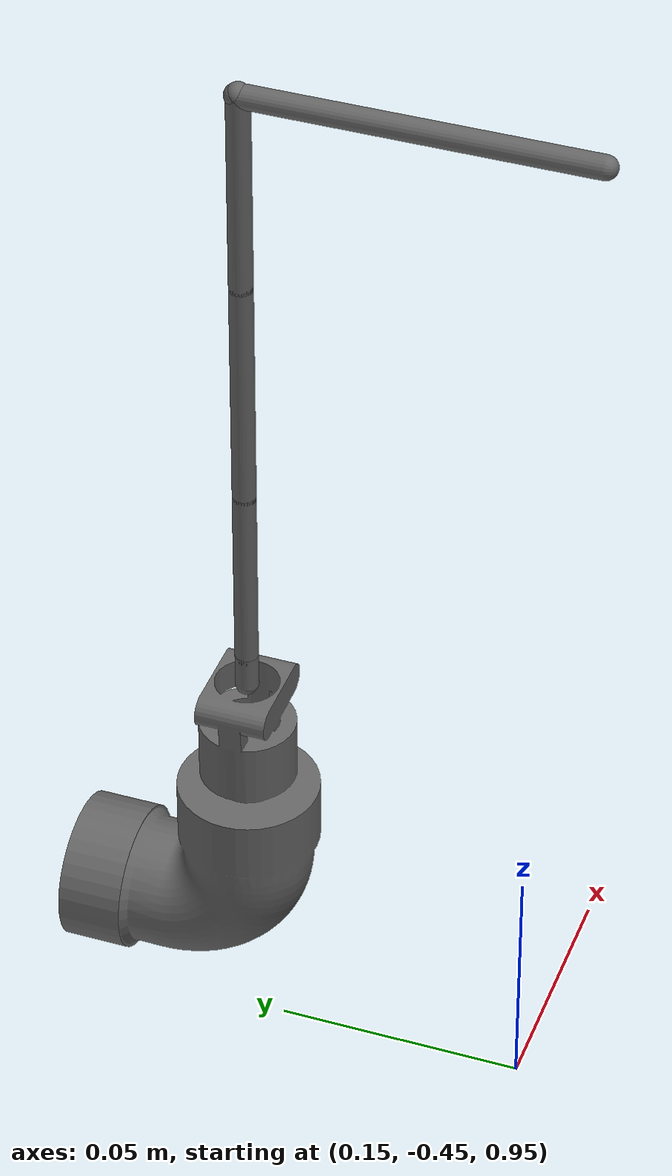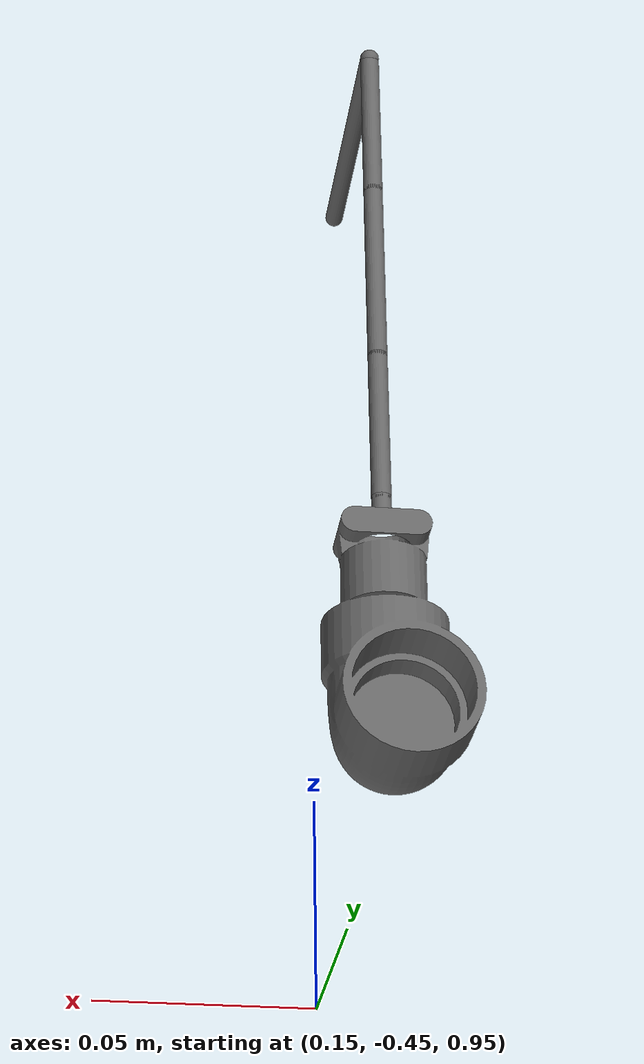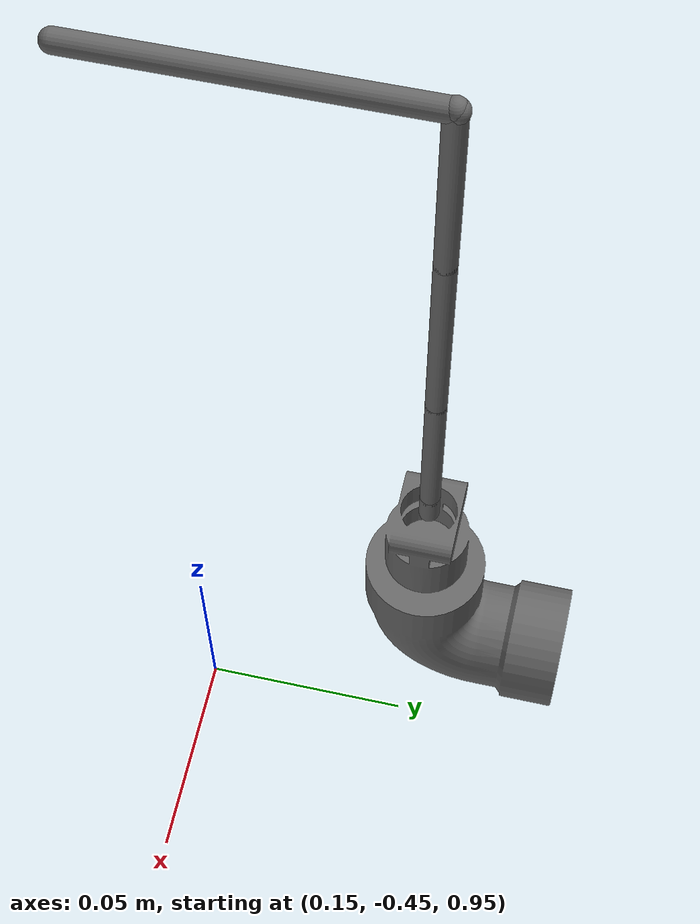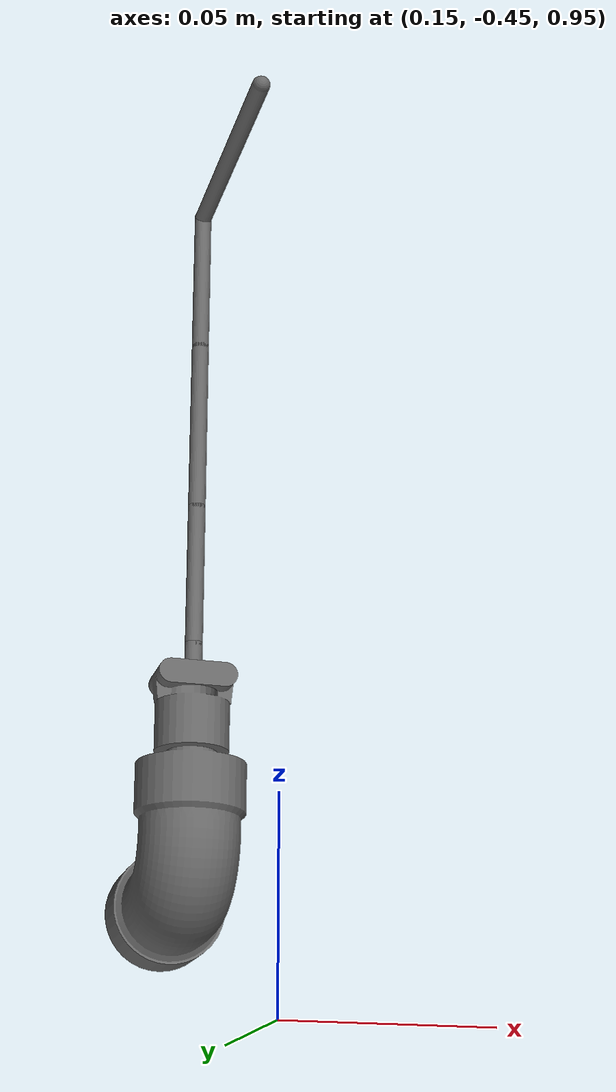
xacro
<?xml version="1.0" ?>

<robot name="taskboard" xmlns:controller="http://playerstage.sourceforge.net/gazebo/xmlschema/#controller"
			xmlns:interface="http://www.ros.org/wiki/xacro"
			xmlns:sensor="http://playerstage.sourceforge.net/gazebo/xmlschema/#sensor"
			xmlns:xacro="http://www.ros.org/wiki/xacro">

  <xacro:include filename="$(find r2_gazebo)/urdf/taskboard.B05.xacro" />

</robot>

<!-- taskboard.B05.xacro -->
<robot xmlns:xacro="http://www.ros.org/wiki/xacro">

  <link name="world"/>
  <link name="dummy">
    <inertial>
      <mass value="1"/>
      <inertia ixx="1" ixy="0.0" ixz="0.0" iyy="1" iyz="0.0" izz="1"/>
    </inertial>
  </link>

  <link name="Taskboard">
    <inertial>
      <mass value="1"/>
      <inertia ixx="1" ixy="0.0" ixz="0.0" iyy="1" iyz="0.0" izz="1"/>
    </inertial>
  </link>

  <link name="Taskboard_Slot2">
    <inertial>
      <mass value="1"/>
      <inertia ixx="1" ixy="0.0" ixz="0.0" iyy="1" iyz="0.0" izz="1"/>
    </inertial>
  </link>
  <link name="Link1">
    <visual>
      <geometry>
        <mesh filename="package://r2_gazebo/Media/models/taskboard/cable_link1.dae"/>
      </geometry>
      <origin xyz="0.0 0.0 0.0" rpy="0 0 0"/>
    </visual>
    <collision>
      <geometry>
        <mesh filename="package://r2_gazebo/Media/models/taskboard/cable_link1.dae" scale="0 0 0"/>
      </geometry>
      <origin xyz="0.0 0.0 0.0" rpy="0 0 0"/>
    </collision>
    <inertial>
      <mass value=".01"/>
      <inertia ixx="1" ixy="0.0" ixz="0.0" iyy="1" iyz="0.0" izz="1"/>
    </inertial>
  </link>

  <link name="Link2_X">
    <inertial>
      <mass value=".01"/>
      <inertia ixx="1" ixy="0.0" ixz="0.0" iyy="1" iyz="0.0" izz="1"/>
    </inertial>
  </link>

  <link name="Link2_Y">
    <inertial>
      <mass value=".01"/>
      <inertia ixx="1" ixy="0.0" ixz="0.0" iyy="1" iyz="0.0" izz="1"/>
    </inertial>
  </link>

  <link name="Link2">
    <visual>
      <geometry>
        <mesh filename="package://r2_gazebo/Media/models/taskboard/cable_link2.dae"/>
      </geometry>
      <origin xyz="0.0 0.0 0.0" rpy="0 0 0"/>
    </visual>
    <collision>
      <geometry>
        <mesh filename="package://r2_gazebo/Media/models/taskboard/cable_link2.dae" scale="0 0 0"/>
      </geometry>
      <origin xyz="0.0 0.0 0.0" rpy="0 0 0"/>
    </collision>
    <inertial>
      <mass value=".01"/>
      <inertia ixx="1" ixy="0.0" ixz="0.0" iyy="1" iyz="0.0" izz="1"/>
    </inertial>
  </link>

  <link name="Link3_X">
    <inertial>
      <mass value=".01"/>
      <inertia ixx="1" ixy="0.0" ixz="0.0" iyy="1" iyz="0.0" izz="1"/>
    </inertial>
  </link>

  <link name="Link3_Y">
    <inertial>
      <mass value=".01"/>
      <inertia ixx="1" ixy="0.0" ixz="0.0" iyy="1" iyz="0.0" izz="1"/>
    </inertial>
  </link>

  <link name="Link3">
    <visual>
      <geometry>
        <mesh filename="package://r2_gazebo/Media/models/taskboard/cable_link3.dae"/>
      </geometry>
      <origin xyz="0.0 0.0 0.0" rpy="0 0 0"/>
    </visual>
    <collision>
      <geometry>
        <mesh filename="package://r2_gazebo/Media/models/taskboard/cable_link3.dae" scale="0 0 0"/>
      </geometry>
      <origin xyz="0.0 0.0 0.0" rpy="0 0 0"/>
    </collision>
    <inertial>
      <mass value=".01"/>
      <inertia ixx="1" ixy="0.0" ixz="0.0" iyy="1" iyz="0.0" izz="1"/>
    </inertial>
  </link>

  <link name="Link4_X">
    <inertial>
      <mass value=".01"/>
      <inertia ixx="1" ixy="0.0" ixz="0.0" iyy="1" iyz="0.0" izz="1"/>
    </inertial>
  </link>

  <link name="Link4_Y">
    <inertial>
      <mass value=".01"/>
      <inertia ixx="1" ixy="0.0" ixz="0.0" iyy="1" iyz="0.0" izz="1"/>
    </inertial>
  </link>

  <link name="Link4">
    <visual>
      <geometry>
        <mesh filename="package://r2_gazebo/Media/models/taskboard/cable_link5.dae"/>
      </geometry>
      <origin xyz="0.0 0.0 0.0" rpy="0 0 0"/>
    </visual>
    <collision>
      <geometry>
        <mesh filename="package://r2_gazebo/Media/models/taskboard/cable_link5.dae" scale="0 0 0"/>
      </geometry>
      <origin xyz="0.0 0.0 0.0" rpy="0 0 0"/>
    </collision>
    <inertial>
      <mass value=".01"/>
      <inertia ixx="1" ixy="0.0" ixz="0.0" iyy="1" iyz="0.0" izz="1"/>
    </inertial>
  </link>

  <link name="Link5_X">
    <inertial>
      <mass value=".01"/>
      <inertia ixx="1" ixy="0.0" ixz="0.0" iyy="1" iyz="0.0" izz="1"/>
    </inertial>
  </link>

  <link name="Link5_Y">
    <inertial>
      <mass value=".01"/>
      <inertia ixx="1" ixy="0.0" ixz="0.0" iyy="1" iyz="0.0" izz="1"/>
    </inertial>
  </link>

  <link name="Link5">
    <visual>
      <geometry>
        <mesh filename="package://r2_gazebo/Media/models/taskboard/cable_link4.dae"/>
      </geometry>
      <origin xyz="0.0 0.0 0.0" rpy="0 0 0"/>
    </visual>
    <collision>
      <geometry>
        <mesh filename="package://r2_gazebo/Media/models/taskboard/cable_link4.dae" scale="0 0 0"/>
      </geometry>
      <origin xyz="0.0 0.0 0.0" rpy="0 0 0"/>
    </collision>
    <inertial>
      <mass value=".01"/>
      <inertia ixx="1" ixy="0.0" ixz="0.0" iyy="1" iyz="0.0" izz="1"/>
    </inertial>
  </link>

  <link name="Taskboard_Slot2_B05_X">
    <inertial>
      <mass value=".01"/>
      <inertia ixx="1" ixy="0.0" ixz="0.0" iyy="1" iyz="0.0" izz="1"/>
    </inertial>
  </link>

  <link name="Taskboard_Slot2_B05_Y">
    <inertial>
      <mass value=".01"/>
      <inertia ixx="1" ixy="0.0" ixz="0.0" iyy="1" iyz="0.0" izz="1"/>
    </inertial>
  </link>

  <link name="Taskboard_Slot2_B05">
    <visual>
      <geometry>
        <mesh filename="package://r2_gazebo/Media/models/taskboard/tskbd_panel_assembly_slot2_b05.dae"/>
      </geometry>
      <origin xyz="0.0 0.0 0.0" rpy="0 0 0"/>
    </visual>
    <collision>
      <geometry>
        <mesh filename="package://r2_gazebo/Media/models/taskboard/tskbd_panel_assembly_slot2_b05.dae" scale="1 1 1"/>
      </geometry>
      <origin xyz="0.0 0.0 0.0" rpy="0 0 0"/>
    </collision>
    <inertial>
      <mass value=".01"/>
      <inertia ixx="1" ixy="0.0" ixz="0.0" iyy="1" iyz="0.0" izz="1"/>
    </inertial>
  </link>

  <joint name="world/dummy" type="fixed">
    <parent link="world"/>
    <child link="dummy"/>
    <origin rpy="0.0 0 0" xyz="0.0 0.0 0.0"/>
  </joint>

  <joint name="dummy/Taskboard" type="fixed">
    <parent link="dummy"/>
    <child link="Taskboard"/>
    <origin rpy="1.57 0 3.14" xyz=".02 -.48 1.3"/>
  </joint>

  <joint name="Taskboard/Taskboard_slot2" type="fixed">
    <parent link="Taskboard"/>
    <child link="Taskboard_Slot2"/>
    <origin rpy="0 0 0" xyz="-0.121 0 0"/>
  </joint>
  <joint name="Taskboard_Slot2/Link1" type="continuous">
    <parent link="Taskboard_Slot2"/>
    <child link="Link1"/>
    <origin rpy="0 0 0" xyz="0 -0.1236 0.01746"/>
    <axis xyz="0 0 1"/>
    <limit effort="100" velocity="100"/>
    <dynamics damping=".1" friction=".1" />
  </joint>

  <joint name="Link1/Link2_X" type="continuous">
    <parent link="Link1"/>
    <child link="Link2_X"/>
    <origin rpy="0 0 0" xyz="0 0 0.066"/>
    <axis xyz="1 0 0"/>
    <limit effort="100" velocity="100"/>
    <dynamics damping=".1" friction=".1" />
  </joint>

  <joint name="Link2_X/Link2_Y" type="continuous">
    <parent link="Link2_X"/>
    <child link="Link2_Y"/>
    <origin rpy="0 0 0" xyz="0 0 0"/>
    <axis xyz="0 1 0"/>
    <limit effort="100" velocity="100"/>
    <dynamics damping=".1" friction=".1" />
  </joint>

  <joint name="Link2_Y/Link2" type="continuous">
    <parent link="Link2_Y"/>
    <child link="Link2"/>
    <origin rpy="1.5708 0 0" xyz="0 0 0"/>
    <axis xyz="0 0 1"/>
    <limit effort="100" velocity="100"/>
    <dynamics damping=".1" friction=".1" />
  </joint>

  <joint name="Link2/Link3_X" type="continuous">
    <parent link="Link2"/>
    <child link="Link3_X"/>
    <origin rpy="0 0 0" xyz="0 0 0.04033"/>
    <axis xyz="1 0 0"/>
    <limit effort="100" velocity="100"/>
    <dynamics damping=".1" friction=".1" />
  </joint>

  <joint name="Link3_X/Link3_Y" type="continuous">
    <parent link="Link3_X"/>
    <child link="Link3_Y"/>
    <origin rpy="0 0 0" xyz="0 0 0"/>
    <axis xyz="0 1 0"/>
    <limit effort="100" velocity="100"/>
    <dynamics damping=".1" friction=".1" />
  </joint>

  <joint name="Link3_Y/Link3" type="continuous">
    <parent link="Link3_Y"/>
    <child link="Link3"/>
    <origin rpy="0 0 0" xyz="0 0 0"/>
    <axis xyz="0 0 1"/>
    <limit effort="100" velocity="100"/>
    <dynamics damping=".1" friction=".1" />
  </joint>

  <joint name="Link3/Link4_X" type="continuous">
    <parent link="Link3"/>
    <child link="Link4_X"/>
    <origin rpy="0 0 0" xyz="0 0 0.04733"/>
    <axis xyz="1 0 0"/>
    <limit effort="100" velocity="100"/>
    <dynamics damping=".1" friction=".1" />
  </joint>

  <joint name="Link4_X/Link4_Y" type="continuous">
    <parent link="Link4_X"/>
    <child link="Link4_Y"/>
    <origin rpy="0 0 0" xyz="0 0 0"/>
    <axis xyz="0 1 0"/>
    <limit effort="100" velocity="100"/>
    <dynamics damping=".1" friction=".1" />
  </joint>

  <joint name="Link4_Y/Link4" type="continuous">
    <parent link="Link4_Y"/>
    <child link="Link4"/>
    <origin rpy="0 0 0" xyz="0 0 0"/>
    <axis xyz="0 0 1"/>
    <limit effort="100" velocity="100"/>
    <dynamics damping=".1" friction=".1" />
  </joint>

  <joint name="Link4/Link5_X" type="continuous">
    <parent link="Link4"/>
    <child link="Link5_X"/>
    <origin rpy="0 0 0" xyz="0 0 0.03811"/>
    <axis xyz="1 0 0"/>
    <limit effort="100" velocity="100"/>
    <dynamics damping=".1" friction=".1" />
  </joint>

  <joint name="Link5_X/Link5_Y" type="continuous">
    <parent link="Link5_X"/>
    <child link="Link5_Y"/>
    <origin rpy="0 0 0" xyz="0 0 0"/>
    <axis xyz="0 1 0"/>
    <limit effort="100" velocity="100"/>
    <dynamics damping=".1" friction=".1" />
  </joint>

  <joint name="Link5_Y/Link5" type="continuous">
    <parent link="Link5_Y"/>
    <child link="Link5"/>
    <origin rpy="0 0  0" xyz="0 0 0"/>
    <axis xyz="0 0 1"/>
    <limit effort="100" velocity="100"/>
    <dynamics damping=".1" friction=".1" />
  </joint>

  <joint name="Link5/Taskboard_Slot2_B05_X" type="continuous">
    <parent link="Link5"/>
    <child link="Taskboard_Slot2_B05_X"/>
    <origin rpy="0 0 0" xyz="0 0 0.006223"/>
    <axis xyz="1 0 0"/>
    <limit effort="100" velocity="100"/>
    <dynamics damping=".1" friction=".1" />
  </joint>

  <joint name="Taskboard_Slot2_B05_X/Taskboard_Slot2_B05_Y" type="continuous">
    <parent link="Taskboard_Slot2_B05_X"/>
    <child link="Taskboard_Slot2_B05_Y"/>
    <origin rpy="0 0 0" xyz="0 0 0"/>
    <axis xyz="0 1 0"/>
    <limit effort="100" velocity="100"/>
    <dynamics damping=".1" friction=".1" />
  </joint>

  <joint name="Taskboard_Slot2_B05_Y/Taskboard_Slot2_B05" type="continuous">
    <parent link="Taskboard_Slot2_B05_Y"/>
    <child link="Taskboard_Slot2_B05"/>
    <origin rpy="0 0 0" xyz="0 0 0"/>
    <axis xyz="0 0 1"/>
    <limit effort="100" velocity="100"/>
    <dynamics damping=".1" friction=".1" />
  </joint>

  <gazebo reference="Link1">
    <material value="Gazebo/Black" />
  </gazebo>

  <gazebo reference="Link2">
    <material value="Gazebo/Black" />
  </gazebo>

  <gazebo reference="Link3">
    <material value="Gazebo/Black" />
  </gazebo>

  <gazebo reference="Link4">
    <material value="Gazebo/Black" />
  </gazebo>

  <gazebo reference="Link5">
    <material value="Gazebo/Black" />
  </gazebo>

  <gazebo reference="Taskboard_Slot2_B01">
    <material value="PR2/Grey3" />
  </gazebo>

</robot>
